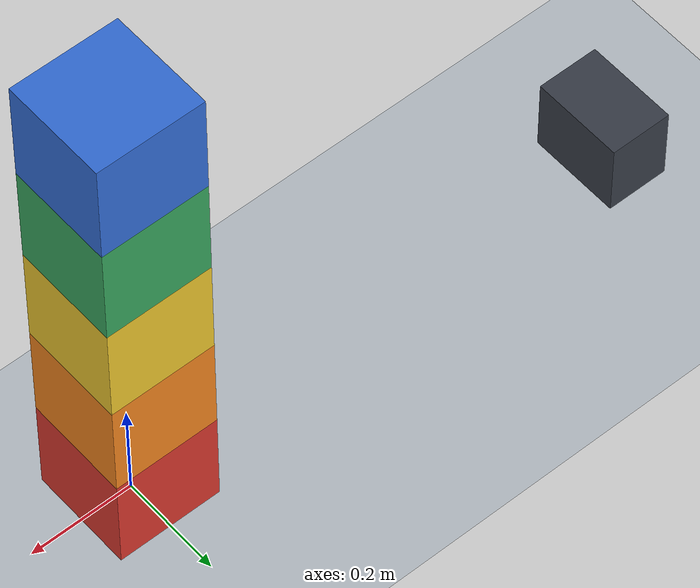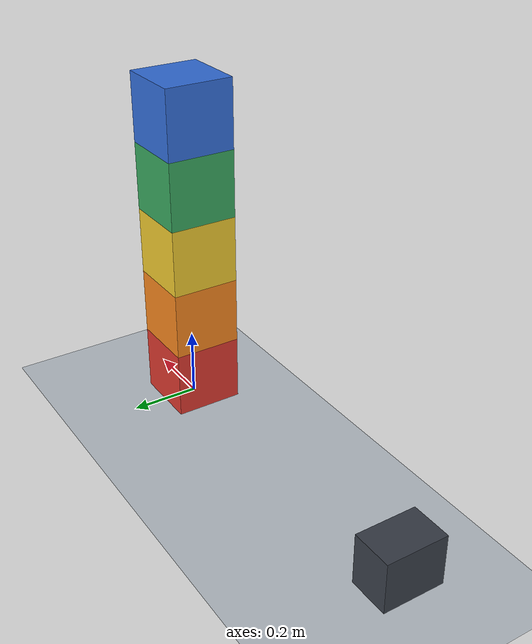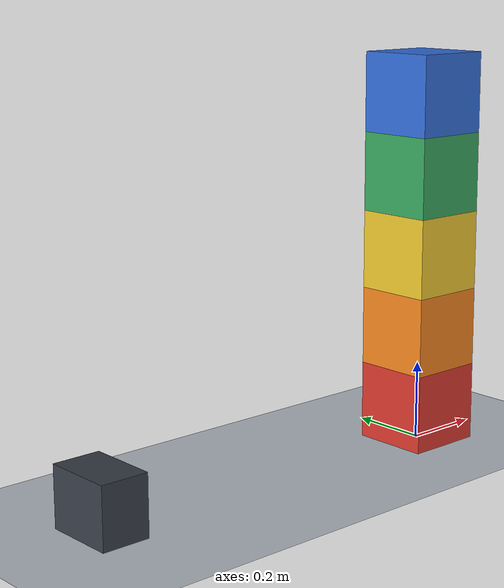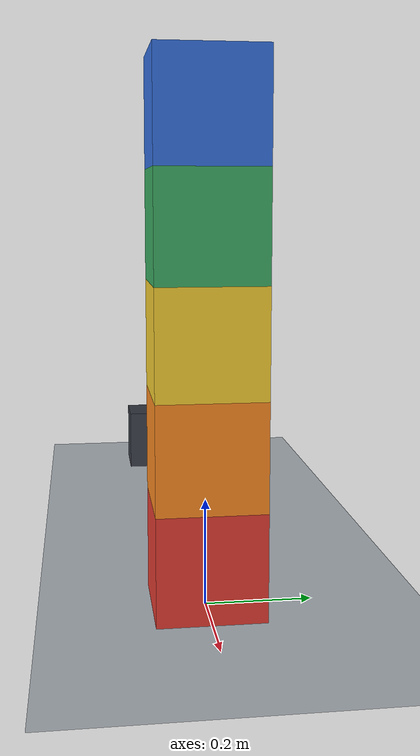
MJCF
<mujoco model="five_block_stack_push">
  <compiler angle="radian"/>
  <option timestep="0.002" gravity="0 0 -9.81" integrator="implicitfast"/>
  <size njmax="1000" nconmax="200"/>
  <statistic center="0 0 0.45" extent="1.8"/>

  <visual>
    <headlight ambient="0.35 0.35 0.35" diffuse="0.65 0.65 0.65" specular="0.2 0.2 0.2"/>
    <rgba haze="0.85 0.9 0.95 1"/>
  </visual>

  <worldbody>
    <light name="overhead" pos="-1 -2 4" dir="0.2 0.3 -1" diffuse="0.8 0.8 0.8"/>
    <camera name="overview" pos="2.8 -4 2.2" xyaxes="0.819 0.573 0 -0.195 0.279 0.940"/>

    <geom name="floor" type="plane" pos="0 0 0" size="4 4 0.1" friction="0.65 0.005 0.0001" rgba="0.72 0.75 0.78 1"/>

    <body name="block1" pos="0 0 0.1">
      <freejoint name="block1_free"/>
      <geom name="block1_geom" type="box" size="0.1 0.1 0.1" mass="0.7" friction="0.6 0.005 0.0001" solref="0.01 1" solimp="0.95 0.99 0.001" rgba="0.85 0.22 0.18 1"/>
    </body>

    <body name="block2" pos="0 0 0.3">
      <freejoint name="block2_free"/>
      <geom name="block2_geom" type="box" size="0.1 0.1 0.1" mass="0.7" friction="0.6 0.005 0.0001" solref="0.01 1" solimp="0.95 0.99 0.001" rgba="0.95 0.52 0.12 1"/>
    </body>

    <body name="block3" pos="0 0 0.5">
      <freejoint name="block3_free"/>
      <geom name="block3_geom" type="box" size="0.1 0.1 0.1" mass="0.7" friction="0.6 0.005 0.0001" solref="0.01 1" solimp="0.95 0.99 0.001" rgba="0.93 0.78 0.18 1"/>
    </body>

    <body name="block4" pos="0 0 0.7">
      <freejoint name="block4_free"/>
      <geom name="block4_geom" type="box" size="0.1 0.1 0.1" mass="0.7" friction="0.6 0.005 0.0001" solref="0.01 1" solimp="0.95 0.99 0.001" rgba="0.22 0.65 0.37 1"/>
    </body>

    <body name="block5" pos="0 0 0.9">
      <freejoint name="block5_free"/>
      <geom name="block5_geom" type="box" size="0.1 0.1 0.1" mass="0.7" friction="0.6 0.005 0.0001" solref="0.01 1" solimp="0.95 0.99 0.001" rgba="0.20 0.43 0.85 1"/>
    </body>

    <!-- A guided pusher approaches from the left and contacts only the bottom block. -->
    <body name="pusher" pos="-1 0 0.085">
      <joint name="pusher_slide" type="slide" axis="1 0 0" limited="true" range="0 1.55" damping="1" solreflimit="0.01 1"/>
      <geom name="pusher_geom" type="box" size="0.06 0.09 0.075" mass="2.5" friction="0.3 0.005 0.0001" solref="0.01 1" solimp="0.95 0.99 0.001" rgba="0.22 0.24 0.28 1"/>
    </body>
  </worldbody>

  <actuator>
    <velocity name="push_motor" joint="pusher_slide" kv="150" ctrllimited="true" ctrlrange="0 1.2" forcelimited="true" forcerange="-80 80"/>
  </actuator>

  <keyframe>
    <key name="start" ctrl="1.2"/>
  </keyframe>
</mujoco>
